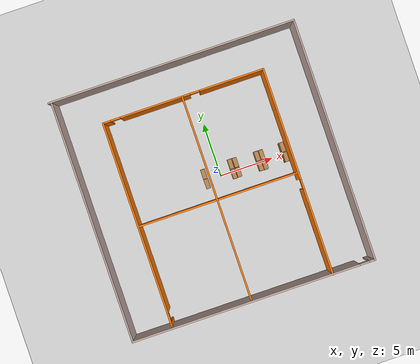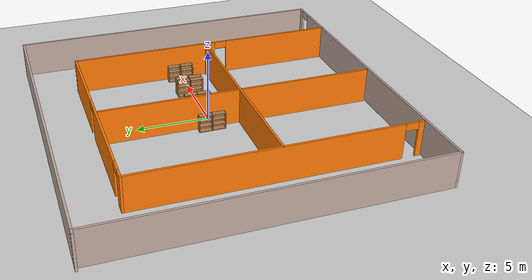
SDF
<sdf version="1.6">
 <world name="default">
  <model name="ground_plane">
   <static>1</static>
   <link name="link">
    <collision name="collision">
     <geometry><plane><normal>0 0 1</normal><size>100 100</size></plane></geometry>
     <surface>
      <contact><collide_bitmask>65535</collide_bitmask></contact>
      <friction><ode><mu>100</mu><mu2>50</mu2></ode></friction>
     </surface>
    </collision>
    <visual name="visual">
     <cast_shadows>0</cast_shadows>
     <geometry><plane><normal>0 0 1</normal><size>100 100</size></plane></geometry>
     <material>
      <script><uri>file://media/materials/scripts/gazebo.material</uri><name>Gazebo/Grey</name></script>
     </material>
    </visual>
   </link>
  </model>
  <model name="Building2">
   <pose>-0.982761 -0.2293 0 0 -0 0</pose>
   <link name="Wall_0">
    <collision name="Wall_0_Collision">
     <geometry><box><size>23.25 0.15 2.5</size></box></geometry>
     <pose>0 0 1.25 0 -0 0</pose>
    </collision>
    <visual name="Wall_0_Visual">
     <pose>0 0 1.25 0 -0 0</pose>
     <geometry><box><size>23.25 0.15 2.5</size></box></geometry>
     <material>
      <script><uri>file://media/materials/scripts/gazebo.material</uri><name>Gazebo/Grey</name></script>
      <ambient>0.760784 0.662745 0.627451 1</ambient>
     </material>
     <meta><layer>0</layer></meta>
    </visual>
    <pose>-1e-06 11.3105 0 0 -0 0</pose>
   </link>
   <link name="Wall_1">
    <collision name="Wall_1_Collision">
     <geometry><box><size>22.75 0.15 2.5</size></box></geometry>
     <pose>0 0 1.25 0 -0 0</pose>
    </collision>
    <visual name="Wall_1_Visual">
     <pose>0 0 1.25 0 -0 0</pose>
     <geometry><box><size>22.75 0.15 2.5</size></box></geometry>
     <material>
      <script><uri>file://media/materials/scripts/gazebo.material</uri><name>Gazebo/Grey</name></script>
      <ambient>0.760784 0.662745 0.627451 1</ambient>
     </material>
     <meta><layer>0</layer></meta>
    </visual>
    <pose>11.55 0.010515 0 0 0 -1.5708</pose>
   </link>
   <link name="Wall_13">
    <collision name="Wall_13_Collision">
     <geometry><box><size>19.25 0.15 2.5</size></box></geometry>
     <pose>0 0 1.25 0 -0 0</pose>
    </collision>
    <visual name="Wall_13_Visual">
     <pose>0 0 1.25 0 -0 0</pose>
     <geometry><box><size>19.25 0.15 2.5</size></box></geometry>
     <material>
      <script><uri>file://media/materials/scripts/gazebo.material</uri><name>Gazebo/Grey</name></script>
      <ambient>0.996078 0.47451 0.0196078 1</ambient>
     </material>
     <meta><layer>0</layer></meta>
    </visual>
    <pose>-0.068329 -1.51737 0 0 0 -1.5708</pose>
   </link>
   <link name="Wall_2">
    <pose>0.124999 -11.2895 0 0 -0 3.14159</pose>
    <visual name="Wall_2_Visual_0">
     <pose>-11.2049 0 1.25 0 -0 0</pose>
     <geometry><box><size>0.590222 0.15 2.5</size></box></geometry>
     <material>
      <script><uri>file://media/materials/scripts/gazebo.material</uri><name>Gazebo/Grey</name></script>
      <ambient>0.760784 0.662745 0.627451 1</ambient>
     </material>
     <meta><layer>0</layer></meta>
    </visual>
    <collision name="Wall_2_Collision_0">
     <geometry><box><size>0.590222 0.15 2.5</size></box></geometry>
     <pose>-11.2049 0 1.25 0 -0 0</pose>
    </collision>
    <visual name="Wall_2_Visual_1">
     <pose>0.745111 0 1.25 0 -0 0</pose>
     <geometry><box><size>21.5098 0.15 2.5</size></box></geometry>
     <material>
      <script><uri>file://media/materials/scripts/gazebo.material</uri><name>Gazebo/Grey</name></script>
      <ambient>0.760784 0.662745 0.627451 1</ambient>
     </material>
     <meta><layer>0</layer></meta>
    </visual>
    <collision name="Wall_2_Collision_1">
     <geometry><box><size>21.5098 0.15 2.5</size></box></geometry>
     <pose>0.745111 0 1.25 0 -0 0</pose>
    </collision>
    <visual name="Wall_2_Visual_2">
     <pose>-10.4598 0 2.25 0 -0 0</pose>
     <geometry><box><size>0.9 0.15 0.5</size></box></geometry>
     <material>
      <script><uri>file://media/materials/scripts/gazebo.material</uri><name>Gazebo/Grey</name></script>
      <ambient>0.760784 0.662745 0.627451 1</ambient>
     </material>
     <meta><layer>0</layer></meta>
    </visual>
    <collision name="Wall_2_Collision_2">
     <geometry><box><size>0.9 0.15 0.5</size></box></geometry>
     <pose>-10.4598 0 2.25 0 -0 0</pose>
    </collision>
   </link>
   <link name="Wall_3">
    <collision name="Wall_3_Collision">
     <geometry><box><size>22.75 0.15 2.5</size></box></geometry>
     <pose>0 0 1.25 0 -0 0</pose>
    </collision>
    <visual name="Wall_3_Visual">
     <pose>0 0 1.25 0 -0 0</pose>
     <geometry><box><size>22.75 0.15 2.5</size></box></geometry>
     <material>
      <script><uri>file://media/materials/scripts/gazebo.material</uri><name>Gazebo/Grey</name></script>
      <ambient>0.760784 0.662745 0.627451 1</ambient>
     </material>
     <meta><layer>0</layer></meta>
    </visual>
    <pose>-11.3 0.010515 0 0 -0 1.5708</pose>
   </link>
   <link name="Wall_5">
    <pose>7.57209 -1.63552 0 0 -0 1.5708</pose>
    <visual name="Wall_5_Visual_0">
     <pose>-5.69826 0 1.25 0 -0 0</pose>
     <geometry><box><size>8.10348 0.15 2.5</size></box></geometry>
     <material>
      <script><uri>file://media/materials/scripts/gazebo.material</uri><name>Gazebo/Grey</name></script>
      <ambient>0.996078 0.47451 0.0196078 1</ambient>
     </material>
     <meta><layer>0</layer></meta>
    </visual>
    <collision name="Wall_5_Collision_0">
     <geometry><box><size>8.10348 0.15 2.5</size></box></geometry>
     <pose>-5.69826 0 1.25 0 -0 0</pose>
    </collision>
    <visual name="Wall_5_Visual_1">
     <pose>4.50174 0 1.25 0 -0 0</pose>
     <geometry><box><size>10.4965 0.15 2.5</size></box></geometry>
     <material>
      <script><uri>file://media/materials/scripts/gazebo.material</uri><name>Gazebo/Grey</name></script>
      <ambient>0.996078 0.47451 0.0196078 1</ambient>
     </material>
     <meta><layer>0</layer></meta>
    </visual>
    <collision name="Wall_5_Collision_1">
     <geometry><box><size>10.4965 0.15 2.5</size></box></geometry>
     <pose>4.50174 0 1.25 0 -0 0</pose>
    </collision>
    <visual name="Wall_5_Visual_2">
     <pose>-1.19652 0 2.25 0 -0 0</pose>
     <geometry><box><size>0.9 0.15 0.5</size></box></geometry>
     <material>
      <script><uri>file://media/materials/scripts/gazebo.material</uri><name>Gazebo/Grey</name></script>
      <ambient>0.996078 0.47451 0.0196078 1</ambient>
     </material>
     <meta><layer>0</layer></meta>
    </visual>
    <collision name="Wall_5_Collision_2">
     <geometry><box><size>0.9 0.15 0.5</size></box></geometry>
     <pose>-1.19652 0 2.25 0 -0 0</pose>
    </collision>
   </link>
   <link name="Wall_6">
    <pose>0.022094 8.03948 0 0 -0 3.14159</pose>
    <visual name="Wall_6_Visual_0">
     <pose>-4.58053 0 1.25 0 -0 0</pose>
     <geometry><box><size>6.08894 0.15 2.5</size></box></geometry>
     <material>
      <script><uri>file://media/materials/scripts/gazebo.material</uri><name>Gazebo/Grey</name></script>
      <ambient>0.996078 0.47451 0.0196078 1</ambient>
     </material>
     <meta><layer>0</layer></meta>
    </visual>
    <collision name="Wall_6_Collision_0">
     <geometry><box><size>6.08894 0.15 2.5</size></box></geometry>
     <pose>-4.58053 0 1.25 0 -0 0</pose>
    </collision>
    <visual name="Wall_6_Visual_1">
     <pose>2.64925 0 1.25 0 -0 0</pose>
     <geometry><box><size>6.57062 0.15 2.5</size></box></geometry>
     <material>
      <script><uri>file://media/materials/scripts/gazebo.material</uri><name>Gazebo/Grey</name></script>
      <ambient>0.996078 0.47451 0.0196078 1</ambient>
     </material>
     <meta><layer>0</layer></meta>
    </visual>
    <collision name="Wall_6_Collision_1">
     <geometry><box><size>6.57062 0.15 2.5</size></box></geometry>
     <pose>2.64925 0 1.25 0 -0 0</pose>
    </collision>
    <visual name="Wall_6_Visual_2">
     <pose>7.22978 0 1.25 0 -0 0</pose>
     <geometry><box><size>0.790441 0.15 2.5</size></box></geometry>
     <material>
      <script><uri>file://media/materials/scripts/gazebo.material</uri><name>Gazebo/Grey</name></script>
      <ambient>0.996078 0.47451 0.0196078 1</ambient>
     </material>
     <meta><layer>0</layer></meta>
    </visual>
    <collision name="Wall_6_Collision_2">
     <geometry><box><size>0.790441 0.15 2.5</size></box></geometry>
     <pose>7.22978 0 1.25 0 -0 0</pose>
    </collision>
    <visual name="Wall_6_Visual_3">
     <pose>-1.08606 0 2.25 0 -0 0</pose>
     <geometry><box><size>0.9 0.15 0.5</size></box></geometry>
     <material>
      <script><uri>file://media/materials/scripts/gazebo.material</uri><name>Gazebo/Grey</name></script>
      <ambient>0.996078 0.47451 0.0196078 1</ambient>
     </material>
     <meta><layer>0</layer></meta>
    </visual>
    <collision name="Wall_6_Collision_3">
     <geometry><box><size>0.9 0.15 0.5</size></box></geometry>
     <pose>-1.08606 0 2.25 0 -0 0</pose>
    </collision>
    <visual name="Wall_6_Visual_4">
     <pose>6.38456 0 2.25 0 -0 0</pose>
     <geometry><box><size>0.9 0.15 0.5</size></box></geometry>
     <material>
      <script><uri>file://media/materials/scripts/gazebo.material</uri><name>Gazebo/Grey</name></script>
      <ambient>0.996078 0.47451 0.0196078 1</ambient>
     </material>
     <meta><layer>0</layer></meta>
    </visual>
    <collision name="Wall_6_Collision_4">
     <geometry><box><size>0.9 0.15 0.5</size></box></geometry>
     <pose>6.38456 0 2.25 0 -0 0</pose>
    </collision>
   </link>
   <link name="Wall_7">
    <pose>-7.5279 -1.51052 0 0 0 -1.5708</pose>
    <visual name="Wall_7_Visual_0">
     <pose>-0.641428 0 1.25 0 -0 0</pose>
     <geometry><box><size>17.9671 0.15 2.5</size></box></geometry>
     <material>
      <script><uri>file://media/materials/scripts/gazebo.material</uri><name>Gazebo/Grey</name></script>
      <ambient>0.996078 0.47451 0.0196078 1</ambient>
     </material>
     <meta><layer>0</layer></meta>
    </visual>
    <collision name="Wall_7_Collision_0">
     <geometry><box><size>17.9671 0.15 2.5</size></box></geometry>
     <pose>-0.641428 0 1.25 0 -0 0</pose>
    </collision>
    <visual name="Wall_7_Visual_1">
     <pose>9.43357 0 1.25 0 -0 0</pose>
     <geometry><box><size>0.382856 0.15 2.5</size></box></geometry>
     <material>
      <script><uri>file://media/materials/scripts/gazebo.material</uri><name>Gazebo/Grey</name></script>
      <ambient>0.996078 0.47451 0.0196078 1</ambient>
     </material>
     <meta><layer>0</layer></meta>
    </visual>
    <collision name="Wall_7_Collision_1">
     <geometry><box><size>0.382856 0.15 2.5</size></box></geometry>
     <pose>9.43357 0 1.25 0 -0 0</pose>
    </collision>
    <visual name="Wall_7_Visual_2">
     <pose>8.79214 0 2.25 0 -0 0</pose>
     <geometry><box><size>0.9 0.15 0.5</size></box></geometry>
     <material>
      <script><uri>file://media/materials/scripts/gazebo.material</uri><name>Gazebo/Grey</name></script>
      <ambient>0.996078 0.47451 0.0196078 1</ambient>
     </material>
     <meta><layer>0</layer></meta>
    </visual>
    <collision name="Wall_7_Collision_2">
     <geometry><box><size>0.9 0.15 0.5</size></box></geometry>
     <pose>8.79214 0 2.25 0 -0 0</pose>
    </collision>
   </link>
   <link name="Wall_9">
    <collision name="Wall_9_Collision">
     <geometry><box><size>15.25 0.15 2.5</size></box></geometry>
     <pose>0 0 1.25 0 -0 0</pose>
    </collision>
    <visual name="Wall_9_Visual">
     <pose>0 0 1.25 0 -0 0</pose>
     <geometry><box><size>15.25 0.15 2.5</size></box></geometry>
     <material>
      <script><uri>file://media/materials/scripts/gazebo.material</uri><name>Gazebo/Grey</name></script>
      <ambient>0.996078 0.47451 0.0196078 1</ambient>
     </material>
     <meta><layer>0</layer></meta>
    </visual>
    <pose>0.033742 -1.70878 0 0 -0 0</pose>
   </link>
   <static>1</static>
  </model>
  <model name="bookshelf_clone_7">
   <static>1</static>
   <link name="link">
    <inertial><mass>1</mass></inertial>
    <collision name="back">
     <pose>0 0.005 0.6 0 -0 0</pose>
     <geometry><box><size>0.9 0.01 1.2</size></box></geometry>
    </collision>
    <visual name="visual1">
     <pose>0 0.005 0.6 0 -0 0</pose>
     <geometry><box><size>0.9 0.01 1.2</size></box></geometry>
     <material>
      <script><uri>file://media/materials/scripts/gazebo.material</uri><name>Gazebo/Wood</name></script>
     </material>
    </visual>
    <collision name="left_side">
     <pose>0.45 -0.195 0.6 0 -0 0</pose>
     <geometry><box><size>0.02 0.4 1.2</size></box></geometry>
    </collision>
    <visual name="visual2">
     <pose>0.45 -0.195 0.6 0 -0 0</pose>
     <geometry><box><size>0.02 0.4 1.2</size></box></geometry>
     <material>
      <script><uri>file://media/materials/scripts/gazebo.material</uri><name>Gazebo/Wood</name></script>
     </material>
    </visual>
    <collision name="right_side">
     <pose>-0.45 -0.195 0.6 0 -0 0</pose>
     <geometry><box><size>0.02 0.4 1.2</size></box></geometry>
    </collision>
    <visual name="visual3">
     <pose>-0.45 -0.195 0.6 0 -0 0</pose>
     <geometry><box><size>0.02 0.4 1.2</size></box></geometry>
     <material>
      <script><uri>file://media/materials/scripts/gazebo.material</uri><name>Gazebo/Wood</name></script>
     </material>
    </visual>
    <collision name="bottom">
     <pose>0 -0.195 0.03 0 -0 0</pose>
     <geometry><box><size>0.88 0.4 0.06</size></box></geometry>
    </collision>
    <visual name="visual4">
     <pose>0 -0.195 0.03 0 -0 0</pose>
     <geometry><box><size>0.88 0.4 0.06</size></box></geometry>
     <material>
      <script><uri>file://media/materials/scripts/gazebo.material</uri><name>Gazebo/Wood</name></script>
     </material>
    </visual>
    <collision name="top">
     <pose>0 -0.195 1.19 0 -0 0</pose>
     <geometry><box><size>0.88 0.4 0.02</size></box></geometry>
    </collision>
    <visual name="visual5">
     <pose>0 -0.195 1.19 0 -0 0</pose>
     <geometry><box><size>0.88 0.4 0.02</size></box></geometry>
     <material>
      <script><uri>file://media/materials/scripts/gazebo.material</uri><name>Gazebo/Wood</name></script>
     </material>
    </visual>
    <collision name="low_shelf">
     <pose>0 -0.195 0.43 0 -0 0</pose>
     <geometry><box><size>0.88 0.4 0.02</size></box></geometry>
    </collision>
    <visual name="visual6">
     <pose>0 -0.195 0.43 0 -0 0</pose>
     <geometry><box><size>0.88 0.4 0.02</size></box></geometry>
     <material>
      <script><uri>file://media/materials/scripts/gazebo.material</uri><name>Gazebo/Wood</name></script>
     </material>
    </visual>
    <collision name="high_shelf">
     <pose>0 -0.195 0.8 0 -0 0</pose>
     <geometry><box><size>0.88 0.4 0.02</size></box></geometry>
    </collision>
    <visual name="visual7">
     <pose>0 -0.195 0.8 0 -0 0</pose>
     <geometry><box><size>0.88 0.4 0.02</size></box></geometry>
     <material>
      <script><uri>file://media/materials/scripts/gazebo.material</uri><name>Gazebo/Wood</name></script>
     </material>
    </visual>
   </link>
   <pose>-1.25854 -0.279594 0 0 0 -1.57103</pose>
  </model>
  <model name="bookshelf_clone_8">
   <static>1</static>
   <link name="link">
    <inertial><mass>1</mass></inertial>
    <collision name="back">
     <pose>0 0.005 0.6 0 -0 0</pose>
     <geometry><box><size>0.9 0.01 1.2</size></box></geometry>
    </collision>
    <visual name="visual1">
     <pose>0 0.005 0.6 0 -0 0</pose>
     <geometry><box><size>0.9 0.01 1.2</size></box></geometry>
     <material>
      <script><uri>file://media/materials/scripts/gazebo.material</uri><name>Gazebo/Wood</name></script>
     </material>
    </visual>
    <collision name="left_side">
     <pose>0.45 -0.195 0.6 0 -0 0</pose>
     <geometry><box><size>0.02 0.4 1.2</size></box></geometry>
    </collision>
    <visual name="visual2">
     <pose>0.45 -0.195 0.6 0 -0 0</pose>
     <geometry><box><size>0.02 0.4 1.2</size></box></geometry>
     <material>
      <script><uri>file://media/materials/scripts/gazebo.material</uri><name>Gazebo/Wood</name></script>
     </material>
    </visual>
    <collision name="right_side">
     <pose>-0.45 -0.195 0.6 0 -0 0</pose>
     <geometry><box><size>0.02 0.4 1.2</size></box></geometry>
    </collision>
    <visual name="visual3">
     <pose>-0.45 -0.195 0.6 0 -0 0</pose>
     <geometry><box><size>0.02 0.4 1.2</size></box></geometry>
     <material>
      <script><uri>file://media/materials/scripts/gazebo.material</uri><name>Gazebo/Wood</name></script>
     </material>
    </visual>
    <collision name="bottom">
     <pose>0 -0.195 0.03 0 -0 0</pose>
     <geometry><box><size>0.88 0.4 0.06</size></box></geometry>
    </collision>
    <visual name="visual4">
     <pose>0 -0.195 0.03 0 -0 0</pose>
     <geometry><box><size>0.88 0.4 0.06</size></box></geometry>
     <material>
      <script><uri>file://media/materials/scripts/gazebo.material</uri><name>Gazebo/Wood</name></script>
     </material>
    </visual>
    <collision name="top">
     <pose>0 -0.195 1.19 0 -0 0</pose>
     <geometry><box><size>0.88 0.4 0.02</size></box></geometry>
    </collision>
    <visual name="visual5">
     <pose>0 -0.195 1.19 0 -0 0</pose>
     <geometry><box><size>0.88 0.4 0.02</size></box></geometry>
     <material>
      <script><uri>file://media/materials/scripts/gazebo.material</uri><name>Gazebo/Wood</name></script>
     </material>
    </visual>
    <collision name="low_shelf">
     <pose>0 -0.195 0.43 0 -0 0</pose>
     <geometry><box><size>0.88 0.4 0.02</size></box></geometry>
    </collision>
    <visual name="visual6">
     <pose>0 -0.195 0.43 0 -0 0</pose>
     <geometry><box><size>0.88 0.4 0.02</size></box></geometry>
     <material>
      <script><uri>file://media/materials/scripts/gazebo.material</uri><name>Gazebo/Wood</name></script>
     </material>
    </visual>
    <collision name="high_shelf">
     <pose>0 -0.195 0.8 0 -0 0</pose>
     <geometry><box><size>0.88 0.4 0.02</size></box></geometry>
    </collision>
    <visual name="visual7">
     <pose>0 -0.195 0.8 0 -0 0</pose>
     <geometry><box><size>0.88 0.4 0.02</size></box></geometry>
     <material>
      <script><uri>file://media/materials/scripts/gazebo.material</uri><name>Gazebo/Wood</name></script>
     </material>
    </visual>
   </link>
   <pose>-1.26427 0.650947 0 0 0 -1.57056</pose>
  </model>
  <model name="bookshelf_clone_105">
   <static>1</static>
   <link name="link">
    <inertial><mass>1</mass></inertial>
    <collision name="back">
     <pose>0 0.005 0.6 0 -0 0</pose>
     <geometry><box><size>0.9 0.01 1.2</size></box></geometry>
    </collision>
    <visual name="visual1">
     <pose>0 0.005 0.6 0 -0 0</pose>
     <geometry><box><size>0.9 0.01 1.2</size></box></geometry>
     <material>
      <script><uri>file://media/materials/scripts/gazebo.material</uri><name>Gazebo/Wood</name></script>
     </material>
    </visual>
    <collision name="left_side">
     <pose>0.45 -0.195 0.6 0 -0 0</pose>
     <geometry><box><size>0.02 0.4 1.2</size></box></geometry>
    </collision>
    <visual name="visual2">
     <pose>0.45 -0.195 0.6 0 -0 0</pose>
     <geometry><box><size>0.02 0.4 1.2</size></box></geometry>
     <material>
      <script><uri>file://media/materials/scripts/gazebo.material</uri><name>Gazebo/Wood</name></script>
     </material>
    </visual>
    <collision name="right_side">
     <pose>-0.45 -0.195 0.6 0 -0 0</pose>
     <geometry><box><size>0.02 0.4 1.2</size></box></geometry>
    </collision>
    <visual name="visual3">
     <pose>-0.45 -0.195 0.6 0 -0 0</pose>
     <geometry><box><size>0.02 0.4 1.2</size></box></geometry>
     <material>
      <script><uri>file://media/materials/scripts/gazebo.material</uri><name>Gazebo/Wood</name></script>
     </material>
    </visual>
    <collision name="bottom">
     <pose>0 -0.195 0.03 0 -0 0</pose>
     <geometry><box><size>0.88 0.4 0.06</size></box></geometry>
    </collision>
    <visual name="visual4">
     <pose>0 -0.195 0.03 0 -0 0</pose>
     <geometry><box><size>0.88 0.4 0.06</size></box></geometry>
     <material>
      <script><uri>file://media/materials/scripts/gazebo.material</uri><name>Gazebo/Wood</name></script>
     </material>
    </visual>
    <collision name="top">
     <pose>0 -0.195 1.19 0 -0 0</pose>
     <geometry><box><size>0.88 0.4 0.02</size></box></geometry>
    </collision>
    <visual name="visual5">
     <pose>0 -0.195 1.19 0 -0 0</pose>
     <geometry><box><size>0.88 0.4 0.02</size></box></geometry>
     <material>
      <script><uri>file://media/materials/scripts/gazebo.material</uri><name>Gazebo/Wood</name></script>
     </material>
    </visual>
    <collision name="low_shelf">
     <pose>0 -0.195 0.43 0 -0 0</pose>
     <geometry><box><size>0.88 0.4 0.02</size></box></geometry>
    </collision>
    <visual name="visual6">
     <pose>0 -0.195 0.43 0 -0 0</pose>
     <geometry><box><size>0.88 0.4 0.02</size></box></geometry>
     <material>
      <script><uri>file://media/materials/scripts/gazebo.material</uri><name>Gazebo/Wood</name></script>
     </material>
    </visual>
    <collision name="high_shelf">
     <pose>0 -0.195 0.8 0 -0 0</pose>
     <geometry><box><size>0.88 0.4 0.02</size></box></geometry>
    </collision>
    <visual name="visual7">
     <pose>0 -0.195 0.8 0 -0 0</pose>
     <geometry><box><size>0.88 0.4 0.02</size></box></geometry>
     <material>
      <script><uri>file://media/materials/scripts/gazebo.material</uri><name>Gazebo/Wood</name></script>
     </material>
    </visual>
   </link>
   <pose>1.36518 0.747307 0 0 0 -1.57004</pose>
  </model>
  <model name="bookshelf_clone_106">
   <static>1</static>
   <link name="link">
    <inertial><mass>1</mass></inertial>
    <collision name="back">
     <pose>0 0.005 0.6 0 -0 0</pose>
     <geometry><box><size>0.9 0.01 1.2</size></box></geometry>
    </collision>
    <visual name="visual1">
     <pose>0 0.005 0.6 0 -0 0</pose>
     <geometry><box><size>0.9 0.01 1.2</size></box></geometry>
     <material>
      <script><uri>file://media/materials/scripts/gazebo.material</uri><name>Gazebo/Wood</name></script>
     </material>
    </visual>
    <collision name="left_side">
     <pose>0.45 -0.195 0.6 0 -0 0</pose>
     <geometry><box><size>0.02 0.4 1.2</size></box></geometry>
    </collision>
    <visual name="visual2">
     <pose>0.45 -0.195 0.6 0 -0 0</pose>
     <geometry><box><size>0.02 0.4 1.2</size></box></geometry>
     <material>
      <script><uri>file://media/materials/scripts/gazebo.material</uri><name>Gazebo/Wood</name></script>
     </material>
    </visual>
    <collision name="right_side">
     <pose>-0.45 -0.195 0.6 0 -0 0</pose>
     <geometry><box><size>0.02 0.4 1.2</size></box></geometry>
    </collision>
    <visual name="visual3">
     <pose>-0.45 -0.195 0.6 0 -0 0</pose>
     <geometry><box><size>0.02 0.4 1.2</size></box></geometry>
     <material>
      <script><uri>file://media/materials/scripts/gazebo.material</uri><name>Gazebo/Wood</name></script>
     </material>
    </visual>
    <collision name="bottom">
     <pose>0 -0.195 0.03 0 -0 0</pose>
     <geometry><box><size>0.88 0.4 0.06</size></box></geometry>
    </collision>
    <visual name="visual4">
     <pose>0 -0.195 0.03 0 -0 0</pose>
     <geometry><box><size>0.88 0.4 0.06</size></box></geometry>
     <material>
      <script><uri>file://media/materials/scripts/gazebo.material</uri><name>Gazebo/Wood</name></script>
     </material>
    </visual>
    <collision name="top">
     <pose>0 -0.195 1.19 0 -0 0</pose>
     <geometry><box><size>0.88 0.4 0.02</size></box></geometry>
    </collision>
    <visual name="visual5">
     <pose>0 -0.195 1.19 0 -0 0</pose>
     <geometry><box><size>0.88 0.4 0.02</size></box></geometry>
     <material>
      <script><uri>file://media/materials/scripts/gazebo.material</uri><name>Gazebo/Wood</name></script>
     </material>
    </visual>
    <collision name="low_shelf">
     <pose>0 -0.195 0.43 0 -0 0</pose>
     <geometry><box><size>0.88 0.4 0.02</size></box></geometry>
    </collision>
    <visual name="visual6">
     <pose>0 -0.195 0.43 0 -0 0</pose>
     <geometry><box><size>0.88 0.4 0.02</size></box></geometry>
     <material>
      <script><uri>file://media/materials/scripts/gazebo.material</uri><name>Gazebo/Wood</name></script>
     </material>
    </visual>
    <collision name="high_shelf">
     <pose>0 -0.195 0.8 0 -0 0</pose>
     <geometry><box><size>0.88 0.4 0.02</size></box></geometry>
    </collision>
    <visual name="visual7">
     <pose>0 -0.195 0.8 0 -0 0</pose>
     <geometry><box><size>0.88 0.4 0.02</size></box></geometry>
     <material>
      <script><uri>file://media/materials/scripts/gazebo.material</uri><name>Gazebo/Wood</name></script>
     </material>
    </visual>
   </link>
   <pose>1.36032 -0.211896 0 0 0 -1.57004</pose>
  </model>
  <model name="bookshelf_clone_112">
   <static>1</static>
   <link name="link">
    <inertial><mass>1</mass></inertial>
    <collision name="back">
     <pose>0 0.005 0.6 0 -0 0</pose>
     <geometry><box><size>0.9 0.01 1.2</size></box></geometry>
    </collision>
    <visual name="visual1">
     <pose>0 0.005 0.6 0 -0 0</pose>
     <geometry><box><size>0.9 0.01 1.2</size></box></geometry>
     <material>
      <script><uri>file://media/materials/scripts/gazebo.material</uri><name>Gazebo/Wood</name></script>
     </material>
    </visual>
    <collision name="left_side">
     <pose>0.45 -0.195 0.6 0 -0 0</pose>
     <geometry><box><size>0.02 0.4 1.2</size></box></geometry>
    </collision>
    <visual name="visual2">
     <pose>0.45 -0.195 0.6 0 -0 0</pose>
     <geometry><box><size>0.02 0.4 1.2</size></box></geometry>
     <material>
      <script><uri>file://media/materials/scripts/gazebo.material</uri><name>Gazebo/Wood</name></script>
     </material>
    </visual>
    <collision name="right_side">
     <pose>-0.45 -0.195 0.6 0 -0 0</pose>
     <geometry><box><size>0.02 0.4 1.2</size></box></geometry>
    </collision>
    <visual name="visual3">
     <pose>-0.45 -0.195 0.6 0 -0 0</pose>
     <geometry><box><size>0.02 0.4 1.2</size></box></geometry>
     <material>
      <script><uri>file://media/materials/scripts/gazebo.material</uri><name>Gazebo/Wood</name></script>
     </material>
    </visual>
    <collision name="bottom">
     <pose>0 -0.195 0.03 0 -0 0</pose>
     <geometry><box><size>0.88 0.4 0.06</size></box></geometry>
    </collision>
    <visual name="visual4">
     <pose>0 -0.195 0.03 0 -0 0</pose>
     <geometry><box><size>0.88 0.4 0.06</size></box></geometry>
     <material>
      <script><uri>file://media/materials/scripts/gazebo.material</uri><name>Gazebo/Wood</name></script>
     </material>
    </visual>
    <collision name="top">
     <pose>0 -0.195 1.19 0 -0 0</pose>
     <geometry><box><size>0.88 0.4 0.02</size></box></geometry>
    </collision>
    <visual name="visual5">
     <pose>0 -0.195 1.19 0 -0 0</pose>
     <geometry><box><size>0.88 0.4 0.02</size></box></geometry>
     <material>
      <script><uri>file://media/materials/scripts/gazebo.material</uri><name>Gazebo/Wood</name></script>
     </material>
    </visual>
    <collision name="low_shelf">
     <pose>0 -0.195 0.43 0 -0 0</pose>
     <geometry><box><size>0.88 0.4 0.02</size></box></geometry>
    </collision>
    <visual name="visual6">
     <pose>0 -0.195 0.43 0 -0 0</pose>
     <geometry><box><size>0.88 0.4 0.02</size></box></geometry>
     <material>
      <script><uri>file://media/materials/scripts/gazebo.material</uri><name>Gazebo/Wood</name></script>
     </material>
    </visual>
    <collision name="high_shelf">
     <pose>0 -0.195 0.8 0 -0 0</pose>
     <geometry><box><size>0.88 0.4 0.02</size></box></geometry>
    </collision>
    <visual name="visual7">
     <pose>0 -0.195 0.8 0 -0 0</pose>
     <geometry><box><size>0.88 0.4 0.02</size></box></geometry>
     <material>
      <script><uri>file://media/materials/scripts/gazebo.material</uri><name>Gazebo/Wood</name></script>
     </material>
    </visual>
   </link>
   <pose>3.88348 0.646573 0 0 0 -1.57004</pose>
  </model>
  <model name="bookshelf_clone_113">
   <static>1</static>
   <link name="link">
    <inertial><mass>1</mass></inertial>
    <collision name="back">
     <pose>0 0.005 0.6 0 -0 0</pose>
     <geometry><box><size>0.9 0.01 1.2</size></box></geometry>
    </collision>
    <visual name="visual1">
     <pose>0 0.005 0.6 0 -0 0</pose>
     <geometry><box><size>0.9 0.01 1.2</size></box></geometry>
     <material>
      <script><uri>file://media/materials/scripts/gazebo.material</uri><name>Gazebo/Wood</name></script>
     </material>
    </visual>
    <collision name="left_side">
     <pose>0.45 -0.195 0.6 0 -0 0</pose>
     <geometry><box><size>0.02 0.4 1.2</size></box></geometry>
    </collision>
    <visual name="visual2">
     <pose>0.45 -0.195 0.6 0 -0 0</pose>
     <geometry><box><size>0.02 0.4 1.2</size></box></geometry>
     <material>
      <script><uri>file://media/materials/scripts/gazebo.material</uri><name>Gazebo/Wood</name></script>
     </material>
    </visual>
    <collision name="right_side">
     <pose>-0.45 -0.195 0.6 0 -0 0</pose>
     <geometry><box><size>0.02 0.4 1.2</size></box></geometry>
    </collision>
    <visual name="visual3">
     <pose>-0.45 -0.195 0.6 0 -0 0</pose>
     <geometry><box><size>0.02 0.4 1.2</size></box></geometry>
     <material>
      <script><uri>file://media/materials/scripts/gazebo.material</uri><name>Gazebo/Wood</name></script>
     </material>
    </visual>
    <collision name="bottom">
     <pose>0 -0.195 0.03 0 -0 0</pose>
     <geometry><box><size>0.88 0.4 0.06</size></box></geometry>
    </collision>
    <visual name="visual4">
     <pose>0 -0.195 0.03 0 -0 0</pose>
     <geometry><box><size>0.88 0.4 0.06</size></box></geometry>
     <material>
      <script><uri>file://media/materials/scripts/gazebo.material</uri><name>Gazebo/Wood</name></script>
     </material>
    </visual>
    <collision name="top">
     <pose>0 -0.195 1.19 0 -0 0</pose>
     <geometry><box><size>0.88 0.4 0.02</size></box></geometry>
    </collision>
    <visual name="visual5">
     <pose>0 -0.195 1.19 0 -0 0</pose>
     <geometry><box><size>0.88 0.4 0.02</size></box></geometry>
     <material>
      <script><uri>file://media/materials/scripts/gazebo.material</uri><name>Gazebo/Wood</name></script>
     </material>
    </visual>
    <collision name="low_shelf">
     <pose>0 -0.195 0.43 0 -0 0</pose>
     <geometry><box><size>0.88 0.4 0.02</size></box></geometry>
    </collision>
    <visual name="visual6">
     <pose>0 -0.195 0.43 0 -0 0</pose>
     <geometry><box><size>0.88 0.4 0.02</size></box></geometry>
     <material>
      <script><uri>file://media/materials/scripts/gazebo.material</uri><name>Gazebo/Wood</name></script>
     </material>
    </visual>
    <collision name="high_shelf">
     <pose>0 -0.195 0.8 0 -0 0</pose>
     <geometry><box><size>0.88 0.4 0.02</size></box></geometry>
    </collision>
    <visual name="visual7">
     <pose>0 -0.195 0.8 0 -0 0</pose>
     <geometry><box><size>0.88 0.4 0.02</size></box></geometry>
     <material>
      <script><uri>file://media/materials/scripts/gazebo.material</uri><name>Gazebo/Wood</name></script>
     </material>
    </visual>
   </link>
   <pose>3.88873 -0.298113 0 0 0 -1.57004</pose>
  </model>
  <model name="bookshelf_clone_119">
   <static>1</static>
   <link name="link">
    <inertial><mass>1</mass></inertial>
    <collision name="back">
     <pose>0 0.005 0.6 0 -0 0</pose>
     <geometry><box><size>0.9 0.01 1.2</size></box></geometry>
    </collision>
    <visual name="visual1">
     <pose>0 0.005 0.6 0 -0 0</pose>
     <geometry><box><size>0.9 0.01 1.2</size></box></geometry>
     <material>
      <script><uri>file://media/materials/scripts/gazebo.material</uri><name>Gazebo/Wood</name></script>
     </material>
    </visual>
    <collision name="left_side">
     <pose>0.45 -0.195 0.6 0 -0 0</pose>
     <geometry><box><size>0.02 0.4 1.2</size></box></geometry>
    </collision>
    <visual name="visual2">
     <pose>0.45 -0.195 0.6 0 -0 0</pose>
     <geometry><box><size>0.02 0.4 1.2</size></box></geometry>
     <material>
      <script><uri>file://media/materials/scripts/gazebo.material</uri><name>Gazebo/Wood</name></script>
     </material>
    </visual>
    <collision name="right_side">
     <pose>-0.45 -0.195 0.6 0 -0 0</pose>
     <geometry><box><size>0.02 0.4 1.2</size></box></geometry>
    </collision>
    <visual name="visual3">
     <pose>-0.45 -0.195 0.6 0 -0 0</pose>
     <geometry><box><size>0.02 0.4 1.2</size></box></geometry>
     <material>
      <script><uri>file://media/materials/scripts/gazebo.material</uri><name>Gazebo/Wood</name></script>
     </material>
    </visual>
    <collision name="bottom">
     <pose>0 -0.195 0.03 0 -0 0</pose>
     <geometry><box><size>0.88 0.4 0.06</size></box></geometry>
    </collision>
    <visual name="visual4">
     <pose>0 -0.195 0.03 0 -0 0</pose>
     <geometry><box><size>0.88 0.4 0.06</size></box></geometry>
     <material>
      <script><uri>file://media/materials/scripts/gazebo.material</uri><name>Gazebo/Wood</name></script>
     </material>
    </visual>
    <collision name="top">
     <pose>0 -0.195 1.19 0 -0 0</pose>
     <geometry><box><size>0.88 0.4 0.02</size></box></geometry>
    </collision>
    <visual name="visual5">
     <pose>0 -0.195 1.19 0 -0 0</pose>
     <geometry><box><size>0.88 0.4 0.02</size></box></geometry>
     <material>
      <script><uri>file://media/materials/scripts/gazebo.material</uri><name>Gazebo/Wood</name></script>
     </material>
    </visual>
    <collision name="low_shelf">
     <pose>0 -0.195 0.43 0 -0 0</pose>
     <geometry><box><size>0.88 0.4 0.02</size></box></geometry>
    </collision>
    <visual name="visual6">
     <pose>0 -0.195 0.43 0 -0 0</pose>
     <geometry><box><size>0.88 0.4 0.02</size></box></geometry>
     <material>
      <script><uri>file://media/materials/scripts/gazebo.material</uri><name>Gazebo/Wood</name></script>
     </material>
    </visual>
    <collision name="high_shelf">
     <pose>0 -0.195 0.8 0 -0 0</pose>
     <geometry><box><size>0.88 0.4 0.02</size></box></geometry>
    </collision>
    <visual name="visual7">
     <pose>0 -0.195 0.8 0 -0 0</pose>
     <geometry><box><size>0.88 0.4 0.02</size></box></geometry>
     <material>
      <script><uri>file://media/materials/scripts/gazebo.material</uri><name>Gazebo/Wood</name></script>
     </material>
    </visual>
   </link>
   <pose>6.33729 0.683725 0 0 0 -1.57004</pose>
  </model>
  <model name="bookshelf_clone_120">
   <static>1</static>
   <link name="link">
    <inertial><mass>1</mass></inertial>
    <collision name="back">
     <pose>0 0.005 0.6 0 -0 0</pose>
     <geometry><box><size>0.9 0.01 1.2</size></box></geometry>
    </collision>
    <visual name="visual1">
     <pose>0 0.005 0.6 0 -0 0</pose>
     <geometry><box><size>0.9 0.01 1.2</size></box></geometry>
     <material>
      <script><uri>file://media/materials/scripts/gazebo.material</uri><name>Gazebo/Wood</name></script>
     </material>
    </visual>
    <collision name="left_side">
     <pose>0.45 -0.195 0.6 0 -0 0</pose>
     <geometry><box><size>0.02 0.4 1.2</size></box></geometry>
    </collision>
    <visual name="visual2">
     <pose>0.45 -0.195 0.6 0 -0 0</pose>
     <geometry><box><size>0.02 0.4 1.2</size></box></geometry>
     <material>
      <script><uri>file://media/materials/scripts/gazebo.material</uri><name>Gazebo/Wood</name></script>
     </material>
    </visual>
    <collision name="right_side">
     <pose>-0.45 -0.195 0.6 0 -0 0</pose>
     <geometry><box><size>0.02 0.4 1.2</size></box></geometry>
    </collision>
    <visual name="visual3">
     <pose>-0.45 -0.195 0.6 0 -0 0</pose>
     <geometry><box><size>0.02 0.4 1.2</size></box></geometry>
     <material>
      <script><uri>file://media/materials/scripts/gazebo.material</uri><name>Gazebo/Wood</name></script>
     </material>
    </visual>
    <collision name="bottom">
     <pose>0 -0.195 0.03 0 -0 0</pose>
     <geometry><box><size>0.88 0.4 0.06</size></box></geometry>
    </collision>
    <visual name="visual4">
     <pose>0 -0.195 0.03 0 -0 0</pose>
     <geometry><box><size>0.88 0.4 0.06</size></box></geometry>
     <material>
      <script><uri>file://media/materials/scripts/gazebo.material</uri><name>Gazebo/Wood</name></script>
     </material>
    </visual>
    <collision name="top">
     <pose>0 -0.195 1.19 0 -0 0</pose>
     <geometry><box><size>0.88 0.4 0.02</size></box></geometry>
    </collision>
    <visual name="visual5">
     <pose>0 -0.195 1.19 0 -0 0</pose>
     <geometry><box><size>0.88 0.4 0.02</size></box></geometry>
     <material>
      <script><uri>file://media/materials/scripts/gazebo.material</uri><name>Gazebo/Wood</name></script>
     </material>
    </visual>
    <collision name="low_shelf">
     <pose>0 -0.195 0.43 0 -0 0</pose>
     <geometry><box><size>0.88 0.4 0.02</size></box></geometry>
    </collision>
    <visual name="visual6">
     <pose>0 -0.195 0.43 0 -0 0</pose>
     <geometry><box><size>0.88 0.4 0.02</size></box></geometry>
     <material>
      <script><uri>file://media/materials/scripts/gazebo.material</uri><name>Gazebo/Wood</name></script>
     </material>
    </visual>
    <collision name="high_shelf">
     <pose>0 -0.195 0.8 0 -0 0</pose>
     <geometry><box><size>0.88 0.4 0.02</size></box></geometry>
    </collision>
    <visual name="visual7">
     <pose>0 -0.195 0.8 0 -0 0</pose>
     <geometry><box><size>0.88 0.4 0.02</size></box></geometry>
     <material>
      <script><uri>file://media/materials/scripts/gazebo.material</uri><name>Gazebo/Wood</name></script>
     </material>
    </visual>
   </link>
   <pose>6.35212 -0.261181 0 0 0 -1.57004</pose>
  </model>
  <model name="bookshelf_clone_127">
   <static>1</static>
   <link name="link">
    <inertial><mass>1</mass></inertial>
    <collision name="back">
     <pose>0 0.005 0.6 0 -0 0</pose>
     <geometry><box><size>0.9 0.01 1.2</size></box></geometry>
    </collision>
    <visual name="visual1">
     <pose>0 0.005 0.6 0 -0 0</pose>
     <geometry><box><size>0.9 0.01 1.2</size></box></geometry>
     <material>
      <script><uri>file://media/materials/scripts/gazebo.material</uri><name>Gazebo/Wood</name></script>
     </material>
    </visual>
    <collision name="left_side">
     <pose>0.45 -0.195 0.6 0 -0 0</pose>
     <geometry><box><size>0.02 0.4 1.2</size></box></geometry>
    </collision>
    <visual name="visual2">
     <pose>0.45 -0.195 0.6 0 -0 0</pose>
     <geometry><box><size>0.02 0.4 1.2</size></box></geometry>
     <material>
      <script><uri>file://media/materials/scripts/gazebo.material</uri><name>Gazebo/Wood</name></script>
     </material>
    </visual>
    <collision name="right_side">
     <pose>-0.45 -0.195 0.6 0 -0 0</pose>
     <geometry><box><size>0.02 0.4 1.2</size></box></geometry>
    </collision>
    <visual name="visual3">
     <pose>-0.45 -0.195 0.6 0 -0 0</pose>
     <geometry><box><size>0.02 0.4 1.2</size></box></geometry>
     <material>
      <script><uri>file://media/materials/scripts/gazebo.material</uri><name>Gazebo/Wood</name></script>
     </material>
    </visual>
    <collision name="bottom">
     <pose>0 -0.195 0.03 0 -0 0</pose>
     <geometry><box><size>0.88 0.4 0.06</size></box></geometry>
    </collision>
    <visual name="visual4">
     <pose>0 -0.195 0.03 0 -0 0</pose>
     <geometry><box><size>0.88 0.4 0.06</size></box></geometry>
     <material>
      <script><uri>file://media/materials/scripts/gazebo.material</uri><name>Gazebo/Wood</name></script>
     </material>
    </visual>
    <collision name="top">
     <pose>0 -0.195 1.19 0 -0 0</pose>
     <geometry><box><size>0.88 0.4 0.02</size></box></geometry>
    </collision>
    <visual name="visual5">
     <pose>0 -0.195 1.19 0 -0 0</pose>
     <geometry><box><size>0.88 0.4 0.02</size></box></geometry>
     <material>
      <script><uri>file://media/materials/scripts/gazebo.material</uri><name>Gazebo/Wood</name></script>
     </material>
    </visual>
    <collision name="low_shelf">
     <pose>0 -0.195 0.43 0 -0 0</pose>
     <geometry><box><size>0.88 0.4 0.02</size></box></geometry>
    </collision>
    <visual name="visual6">
     <pose>0 -0.195 0.43 0 -0 0</pose>
     <geometry><box><size>0.88 0.4 0.02</size></box></geometry>
     <material>
      <script><uri>file://media/materials/scripts/gazebo.material</uri><name>Gazebo/Wood</name></script>
     </material>
    </visual>
    <collision name="high_shelf">
     <pose>0 -0.195 0.8 0 -0 0</pose>
     <geometry><box><size>0.88 0.4 0.02</size></box></geometry>
    </collision>
    <visual name="visual7">
     <pose>0 -0.195 0.8 0 -0 0</pose>
     <geometry><box><size>0.88 0.4 0.02</size></box></geometry>
     <material>
      <script><uri>file://media/materials/scripts/gazebo.material</uri><name>Gazebo/Wood</name></script>
     </material>
    </visual>
   </link>
   <pose>1.42833 0.742983 0 0 -0 1.56949</pose>
  </model>
  <model name="bookshelf_clone_128">
   <static>1</static>
   <link name="link">
    <inertial><mass>1</mass></inertial>
    <collision name="back">
     <pose>0 0.005 0.6 0 -0 0</pose>
     <geometry><box><size>0.9 0.01 1.2</size></box></geometry>
    </collision>
    <visual name="visual1">
     <pose>0 0.005 0.6 0 -0 0</pose>
     <geometry><box><size>0.9 0.01 1.2</size></box></geometry>
     <material>
      <script><uri>file://media/materials/scripts/gazebo.material</uri><name>Gazebo/Wood</name></script>
     </material>
    </visual>
    <collision name="left_side">
     <pose>0.45 -0.195 0.6 0 -0 0</pose>
     <geometry><box><size>0.02 0.4 1.2</size></box></geometry>
    </collision>
    <visual name="visual2">
     <pose>0.45 -0.195 0.6 0 -0 0</pose>
     <geometry><box><size>0.02 0.4 1.2</size></box></geometry>
     <material>
      <script><uri>file://media/materials/scripts/gazebo.material</uri><name>Gazebo/Wood</name></script>
     </material>
    </visual>
    <collision name="right_side">
     <pose>-0.45 -0.195 0.6 0 -0 0</pose>
     <geometry><box><size>0.02 0.4 1.2</size></box></geometry>
    </collision>
    <visual name="visual3">
     <pose>-0.45 -0.195 0.6 0 -0 0</pose>
     <geometry><box><size>0.02 0.4 1.2</size></box></geometry>
     <material>
      <script><uri>file://media/materials/scripts/gazebo.material</uri><name>Gazebo/Wood</name></script>
     </material>
    </visual>
    <collision name="bottom">
     <pose>0 -0.195 0.03 0 -0 0</pose>
     <geometry><box><size>0.88 0.4 0.06</size></box></geometry>
    </collision>
    <visual name="visual4">
     <pose>0 -0.195 0.03 0 -0 0</pose>
     <geometry><box><size>0.88 0.4 0.06</size></box></geometry>
     <material>
      <script><uri>file://media/materials/scripts/gazebo.material</uri><name>Gazebo/Wood</name></script>
     </material>
    </visual>
    <collision name="top">
     <pose>0 -0.195 1.19 0 -0 0</pose>
     <geometry><box><size>0.88 0.4 0.02</size></box></geometry>
    </collision>
    <visual name="visual5">
     <pose>0 -0.195 1.19 0 -0 0</pose>
     <geometry><box><size>0.88 0.4 0.02</size></box></geometry>
     <material>
      <script><uri>file://media/materials/scripts/gazebo.material</uri><name>Gazebo/Wood</name></script>
     </material>
    </visual>
    <collision name="low_shelf">
     <pose>0 -0.195 0.43 0 -0 0</pose>
     <geometry><box><size>0.88 0.4 0.02</size></box></geometry>
    </collision>
    <visual name="visual6">
     <pose>0 -0.195 0.43 0 -0 0</pose>
     <geometry><box><size>0.88 0.4 0.02</size></box></geometry>
     <material>
      <script><uri>file://media/materials/scripts/gazebo.material</uri><name>Gazebo/Wood</name></script>
     </material>
    </visual>
    <collision name="high_shelf">
     <pose>0 -0.195 0.8 0 -0 0</pose>
     <geometry><box><size>0.88 0.4 0.02</size></box></geometry>
    </collision>
    <visual name="visual7">
     <pose>0 -0.195 0.8 0 -0 0</pose>
     <geometry><box><size>0.88 0.4 0.02</size></box></geometry>
     <material>
      <script><uri>file://media/materials/scripts/gazebo.material</uri><name>Gazebo/Wood</name></script>
     </material>
    </visual>
   </link>
   <pose>1.41049 -0.190965 0 0 -0 1.56949</pose>
  </model>
  <model name="bookshelf_clone_135">
   <static>1</static>
   <link name="link">
    <inertial><mass>1</mass></inertial>
    <collision name="back">
     <pose>0 0.005 0.6 0 -0 0</pose>
     <geometry><box><size>0.9 0.01 1.2</size></box></geometry>
    </collision>
    <visual name="visual1">
     <pose>0 0.005 0.6 0 -0 0</pose>
     <geometry><box><size>0.9 0.01 1.2</size></box></geometry>
     <material>
      <script><uri>file://media/materials/scripts/gazebo.material</uri><name>Gazebo/Wood</name></script>
     </material>
    </visual>
    <collision name="left_side">
     <pose>0.45 -0.195 0.6 0 -0 0</pose>
     <geometry><box><size>0.02 0.4 1.2</size></box></geometry>
    </collision>
    <visual name="visual2">
     <pose>0.45 -0.195 0.6 0 -0 0</pose>
     <geometry><box><size>0.02 0.4 1.2</size></box></geometry>
     <material>
      <script><uri>file://media/materials/scripts/gazebo.material</uri><name>Gazebo/Wood</name></script>
     </material>
    </visual>
    <collision name="right_side">
     <pose>-0.45 -0.195 0.6 0 -0 0</pose>
     <geometry><box><size>0.02 0.4 1.2</size></box></geometry>
    </collision>
    <visual name="visual3">
     <pose>-0.45 -0.195 0.6 0 -0 0</pose>
     <geometry><box><size>0.02 0.4 1.2</size></box></geometry>
     <material>
      <script><uri>file://media/materials/scripts/gazebo.material</uri><name>Gazebo/Wood</name></script>
     </material>
    </visual>
    <collision name="bottom">
     <pose>0 -0.195 0.03 0 -0 0</pose>
     <geometry><box><size>0.88 0.4 0.06</size></box></geometry>
    </collision>
    <visual name="visual4">
     <pose>0 -0.195 0.03 0 -0 0</pose>
     <geometry><box><size>0.88 0.4 0.06</size></box></geometry>
     <material>
      <script><uri>file://media/materials/scripts/gazebo.material</uri><name>Gazebo/Wood</name></script>
     </material>
    </visual>
    <collision name="top">
     <pose>0 -0.195 1.19 0 -0 0</pose>
     <geometry><box><size>0.88 0.4 0.02</size></box></geometry>
    </collision>
    <visual name="visual5">
     <pose>0 -0.195 1.19 0 -0 0</pose>
     <geometry><box><size>0.88 0.4 0.02</size></box></geometry>
     <material>
      <script><uri>file://media/materials/scripts/gazebo.material</uri><name>Gazebo/Wood</name></script>
     </material>
    </visual>
    <collision name="low_shelf">
     <pose>0 -0.195 0.43 0 -0 0</pose>
     <geometry><box><size>0.88 0.4 0.02</size></box></geometry>
    </collision>
    <visual name="visual6">
     <pose>0 -0.195 0.43 0 -0 0</pose>
     <geometry><box><size>0.88 0.4 0.02</size></box></geometry>
     <material>
      <script><uri>file://media/materials/scripts/gazebo.material</uri><name>Gazebo/Wood</name></script>
     </material>
    </visual>
    <collision name="high_shelf">
     <pose>0 -0.195 0.8 0 -0 0</pose>
     <geometry><box><size>0.88 0.4 0.02</size></box></geometry>
    </collision>
    <visual name="visual7">
     <pose>0 -0.195 0.8 0 -0 0</pose>
     <geometry><box><size>0.88 0.4 0.02</size></box></geometry>
     <material>
      <script><uri>file://media/materials/scripts/gazebo.material</uri><name>Gazebo/Wood</name></script>
     </material>
    </visual>
   </link>
   <pose>3.93006 0.642692 0 0 -0 1.56949</pose>
  </model>
  <model name="bookshelf_clone_136">
   <static>1</static>
   <link name="link">
    <inertial><mass>1</mass></inertial>
    <collision name="back">
     <pose>0 0.005 0.6 0 -0 0</pose>
     <geometry><box><size>0.9 0.01 1.2</size></box></geometry>
    </collision>
    <visual name="visual1">
     <pose>0 0.005 0.6 0 -0 0</pose>
     <geometry><box><size>0.9 0.01 1.2</size></box></geometry>
     <material>
      <script><uri>file://media/materials/scripts/gazebo.material</uri><name>Gazebo/Wood</name></script>
     </material>
    </visual>
    <collision name="left_side">
     <pose>0.45 -0.195 0.6 0 -0 0</pose>
     <geometry><box><size>0.02 0.4 1.2</size></box></geometry>
    </collision>
    <visual name="visual2">
     <pose>0.45 -0.195 0.6 0 -0 0</pose>
     <geometry><box><size>0.02 0.4 1.2</size></box></geometry>
     <material>
      <script><uri>file://media/materials/scripts/gazebo.material</uri><name>Gazebo/Wood</name></script>
     </material>
    </visual>
    <collision name="right_side">
     <pose>-0.45 -0.195 0.6 0 -0 0</pose>
     <geometry><box><size>0.02 0.4 1.2</size></box></geometry>
    </collision>
    <visual name="visual3">
     <pose>-0.45 -0.195 0.6 0 -0 0</pose>
     <geometry><box><size>0.02 0.4 1.2</size></box></geometry>
     <material>
      <script><uri>file://media/materials/scripts/gazebo.material</uri><name>Gazebo/Wood</name></script>
     </material>
    </visual>
    <collision name="bottom">
     <pose>0 -0.195 0.03 0 -0 0</pose>
     <geometry><box><size>0.88 0.4 0.06</size></box></geometry>
    </collision>
    <visual name="visual4">
     <pose>0 -0.195 0.03 0 -0 0</pose>
     <geometry><box><size>0.88 0.4 0.06</size></box></geometry>
     <material>
      <script><uri>file://media/materials/scripts/gazebo.material</uri><name>Gazebo/Wood</name></script>
     </material>
    </visual>
    <collision name="top">
     <pose>0 -0.195 1.19 0 -0 0</pose>
     <geometry><box><size>0.88 0.4 0.02</size></box></geometry>
    </collision>
    <visual name="visual5">
     <pose>0 -0.195 1.19 0 -0 0</pose>
     <geometry><box><size>0.88 0.4 0.02</size></box></geometry>
     <material>
      <script><uri>file://media/materials/scripts/gazebo.material</uri><name>Gazebo/Wood</name></script>
     </material>
    </visual>
    <collision name="low_shelf">
     <pose>0 -0.195 0.43 0 -0 0</pose>
     <geometry><box><size>0.88 0.4 0.02</size></box></geometry>
    </collision>
    <visual name="visual6">
     <pose>0 -0.195 0.43 0 -0 0</pose>
     <geometry><box><size>0.88 0.4 0.02</size></box></geometry>
     <material>
      <script><uri>file://media/materials/scripts/gazebo.material</uri><name>Gazebo/Wood</name></script>
     </material>
    </visual>
    <collision name="high_shelf">
     <pose>0 -0.195 0.8 0 -0 0</pose>
     <geometry><box><size>0.88 0.4 0.02</size></box></geometry>
    </collision>
    <visual name="visual7">
     <pose>0 -0.195 0.8 0 -0 0</pose>
     <geometry><box><size>0.88 0.4 0.02</size></box></geometry>
     <material>
      <script><uri>file://media/materials/scripts/gazebo.material</uri><name>Gazebo/Wood</name></script>
     </material>
    </visual>
   </link>
   <pose>3.93006 -0.315344 0 0 -0 1.56949</pose>
  </model>
 </world>
</sdf>
